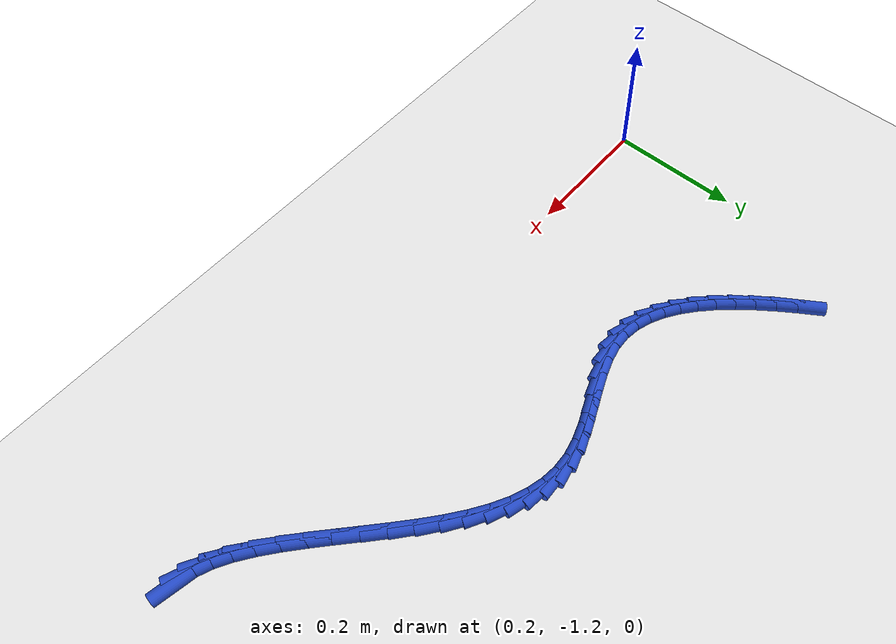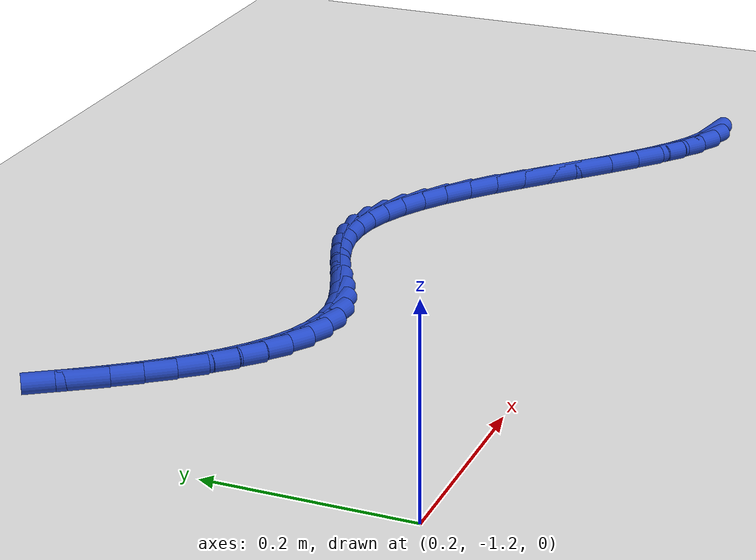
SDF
<sdf version="1.6">
 <world name="default">
  <model name="ground_plane">
   <static>1</static>
   <link name="link">
    <collision name="collision">
     <geometry><plane><normal>0 0 1</normal><size>100 100</size></plane></geometry>
     <surface><friction><ode><mu>100</mu><mu2>50</mu2></ode></friction></surface>
    </collision>
    <visual name="visual">
     <cast_shadows>0</cast_shadows>
     <geometry><plane><normal>0 0 1</normal><size>100 100</size></plane></geometry>
     <material>
      <script><uri>file://media/materials/scripts/gazebo.material</uri><name>Gazebo/WhiteGlow</name></script>
     </material>
    </visual>
   </link>
  </model>
  <model name="line">
   <link name="link_221">
    <pose>1.1336143013700062 -1.1918949117283446 0.01 0 1.57 -0.18952387058512313</pose>
    <collision name="collision">
     <geometry><cylinder><radius>0.01</radius><length>0.08</length></cylinder></geometry>
    </collision>
    <visual name="visual">
     <material>
      <script><name>Gazebo/Blue</name><uri>file://media/materials/scripts/gazebo.material</uri></script>
     </material>
     <geometry><cylinder><radius>0.01</radius><length>0.08</length></cylinder></geometry>
    </visual>
   </link>
   <link name="link_222">
    <pose>1.1137087737763174 -1.1880765111506453 0.01 0 1.57 -0.40078838652270704</pose>
    <collision name="collision">
     <geometry><cylinder><radius>0.01</radius><length>0.08</length></cylinder></geometry>
    </collision>
    <visual name="visual">
     <material>
      <script><name>Gazebo/Blue</name><uri>file://media/materials/scripts/gazebo.material</uri></script>
     </material>
     <geometry><cylinder><radius>0.01</radius><length>0.08</length></cylinder></geometry>
    </visual>
   </link>
   <link name="link_223">
    <pose>1.0924500991500052 -1.1790687251070602 0.01 0 1.57 -0.539802451015101</pose>
    <collision name="collision">
     <geometry><cylinder><radius>0.01</radius><length>0.08</length></cylinder></geometry>
    </collision>
    <visual name="visual">
     <material>
      <script><name>Gazebo/Blue</name><uri>file://media/materials/scripts/gazebo.material</uri></script>
     </material>
     <geometry><cylinder><radius>0.01</radius><length>0.08</length></cylinder></geometry>
    </visual>
   </link>
   <link name="link_224">
    <pose>1.0700231581563246 -1.1656313739450006 0.01 0 1.57 -0.6310668428453812</pose>
    <collision name="collision">
     <geometry><cylinder><radius>0.01</radius><length>0.08</length></cylinder></geometry>
    </collision>
    <visual name="visual">
     <material>
      <script><name>Gazebo/Blue</name><uri>file://media/materials/scripts/gazebo.material</uri></script>
     </material>
     <geometry><cylinder><radius>0.01</radius><length>0.08</length></cylinder></geometry>
    </visual>
   </link>
   <link name="link_225">
    <pose>1.0466128314605314 -1.148524278011877 0.01 0 1.57 -0.6908985467662949</pose>
    <collision name="collision">
     <geometry><cylinder><radius>0.01</radius><length>0.08</length></cylinder></geometry>
    </collision>
    <visual name="visual">
     <material>
      <script><name>Gazebo/Blue</name><uri>file://media/materials/scripts/gazebo.material</uri></script>
     </material>
     <geometry><cylinder><radius>0.01</radius><length>0.08</length></cylinder></geometry>
    </visual>
   </link>
   <link name="link_226">
    <pose>1.0224039997278798 -1.1285072576550994 0.01 0 1.57 -0.7289492516426576</pose>
    <collision name="collision">
     <geometry><cylinder><radius>0.01</radius><length>0.08</length></cylinder></geometry>
    </collision>
    <visual name="visual">
     <material>
      <script><name>Gazebo/Blue</name><uri>file://media/materials/scripts/gazebo.material</uri></script>
     </material>
     <geometry><cylinder><radius>0.01</radius><length>0.08</length></cylinder></geometry>
    </visual>
   </link>
   <link name="link_227">
    <pose>0.997581543623625 -1.106340133222078 0.01 0 1.57 -0.7507093599802385</pose>
    <collision name="collision">
     <geometry><cylinder><radius>0.01</radius><length>0.08</length></cylinder></geometry>
    </collision>
    <visual name="visual">
     <material>
      <script><name>Gazebo/Blue</name><uri>file://media/materials/scripts/gazebo.material</uri></script>
     </material>
     <geometry><cylinder><radius>0.01</radius><length>0.08</length></cylinder></geometry>
    </visual>
   </link>
   <link name="link_228">
    <pose>0.9723303438130224 -1.0827827250602235 0.01 0 1.57 -0.7590935617356627</pose>
    <collision name="collision">
     <geometry><cylinder><radius>0.01</radius><length>0.08</length></cylinder></geometry>
    </collision>
    <visual name="visual">
     <material>
      <script><name>Gazebo/Blue</name><uri>file://media/materials/scripts/gazebo.material</uri></script>
     </material>
     <geometry><cylinder><radius>0.01</radius><length>0.08</length></cylinder></geometry>
    </visual>
   </link>
   <link name="link_229">
    <pose>0.9468352809613271 -1.0585948535169472 0.01 0 1.57 -0.7552630943659574</pose>
    <collision name="collision">
     <geometry><cylinder><radius>0.01</radius><length>0.08</length></cylinder></geometry>
    </collision>
    <visual name="visual">
     <material>
      <script><name>Gazebo/Blue</name><uri>file://media/materials/scripts/gazebo.material</uri></script>
     </material>
     <geometry><cylinder><radius>0.01</radius><length>0.08</length></cylinder></geometry>
    </visual>
   </link>
   <link name="link_230">
    <pose>0.9212812357337936 -1.0345363389396582 0.01 0 1.57 -0.7389516202968986</pose>
    <collision name="collision">
     <geometry><cylinder><radius>0.01</radius><length>0.08</length></cylinder></geometry>
    </collision>
    <visual name="visual">
     <material>
      <script><name>Gazebo/Blue</name><uri>file://media/materials/scripts/gazebo.material</uri></script>
     </material>
     <geometry><cylinder><radius>0.01</radius><length>0.08</length></cylinder></geometry>
    </visual>
   </link>
   <link name="link_231">
    <pose>0.8958530887956775 -1.0113670016757677 0.01 0 1.57 -0.7084242441934158</pose>
    <collision name="collision">
     <geometry><cylinder><radius>0.01</radius><length>0.08</length></cylinder></geometry>
    </collision>
    <visual name="visual">
     <material>
      <script><name>Gazebo/Blue</name><uri>file://media/materials/scripts/gazebo.material</uri></script>
     </material>
     <geometry><cylinder><radius>0.01</radius><length>0.08</length></cylinder></geometry>
    </visual>
   </link>
   <link name="link_232">
    <pose>0.8707356731504244 -0.9898465893062288 0.01 0 1.57 -0.6613481828992555</pose>
    <collision name="collision">
     <geometry><cylinder><radius>0.01</radius><length>0.08</length></cylinder></geometry>
    </collision>
    <visual name="visual">
     <material>
      <script><name>Gazebo/Blue</name><uri>file://media/materials/scripts/gazebo.material</uri></script>
     </material>
     <geometry><cylinder><radius>0.01</radius><length>0.08</length></cylinder></geometry>
    </visual>
   </link>
   <link name="link_233">
    <pose>0.8460461560790415 -0.9706315424880454 0.01 0 1.57 -0.5973584748016434</pose>
    <collision name="collision">
     <geometry><cylinder><radius>0.01</radius><length>0.08</length></cylinder></geometry>
    </collision>
    <visual name="visual">
     <material>
      <script><name>Gazebo/Blue</name><uri>file://media/materials/scripts/gazebo.material</uri></script>
     </material>
     <geometry><cylinder><radius>0.01</radius><length>0.08</length></cylinder></geometry>
    </visual>
   </link>
   <link name="link_234">
    <pose>0.8216992062043372 -0.9540691421925178 0.01 0 1.57 -0.5139113009260561</pose>
    <collision name="collision">
     <geometry><cylinder><radius>0.01</radius><length>0.08</length></cylinder></geometry>
    </collision>
    <visual name="visual">
     <material>
      <script><name>Gazebo/Blue</name><uri>file://media/materials/scripts/gazebo.material</uri></script>
     </material>
     <geometry><cylinder><radius>0.01</radius><length>0.08</length></cylinder></geometry>
    </visual>
   </link>
   <link name="link_235">
    <pose>0.7975717740193152 -0.94044908419379 0.01 0 1.57 -0.40801769125247134</pose>
    <collision name="collision">
     <geometry><cylinder><radius>0.01</radius><length>0.08</length></cylinder></geometry>
    </collision>
    <visual name="visual">
     <material>
      <script><name>Gazebo/Blue</name><uri>file://media/materials/scripts/gazebo.material</uri></script>
     </material>
     <geometry><cylinder><radius>0.01</radius><length>0.08</length></cylinder></geometry>
    </visual>
   </link>
   <link name="link_236">
    <pose>0.773540810016978 -0.9300610642660055 0.01 0 1.57 -0.27801916396661513</pose>
    <collision name="collision">
     <geometry><cylinder><radius>0.01</radius><length>0.08</length></cylinder></geometry>
    </collision>
    <visual name="visual">
     <material>
      <script><name>Gazebo/Blue</name><uri>file://media/materials/scripts/gazebo.material</uri></script>
     </material>
     <geometry><cylinder><radius>0.01</radius><length>0.08</length></cylinder></geometry>
    </visual>
   </link>
   <link name="link_237">
    <pose>0.7494832646903291 -0.9231947781833081 0.01 0 1.57 -0.1255327322023506</pose>
    <collision name="collision">
     <geometry><cylinder><radius>0.01</radius><length>0.08</length></cylinder></geometry>
    </collision>
    <visual name="visual">
     <material>
      <script><name>Gazebo/Blue</name><uri>file://media/materials/scripts/gazebo.material</uri></script>
     </material>
     <geometry><cylinder><radius>0.01</radius><length>0.08</length></cylinder></geometry>
    </visual>
   </link>
   <link name="link_238">
    <pose>0.7252760885323706 -0.9201399217198408 0.01 0 1.57 0.04271399841625901</pose>
    <collision name="collision">
     <geometry><cylinder><radius>0.01</radius><length>0.08</length></cylinder></geometry>
    </collision>
    <visual name="visual">
     <material>
      <script><name>Gazebo/Blue</name><uri>file://media/materials/scripts/gazebo.material</uri></script>
     </material>
     <geometry><cylinder><radius>0.01</radius><length>0.08</length></cylinder></geometry>
    </visual>
   </link>
   <link name="link_239">
    <pose>0.7007962320361059 -0.9211861906497474 0.01 0 1.57 0.20722643835297477</pose>
    <collision name="collision">
     <geometry><cylinder><radius>0.01</radius><length>0.08</length></cylinder></geometry>
    </collision>
    <visual name="visual">
     <material>
      <script><name>Gazebo/Blue</name><uri>file://media/materials/scripts/gazebo.material</uri></script>
     </material>
     <geometry><cylinder><radius>0.01</radius><length>0.08</length></cylinder></geometry>
    </visual>
   </link>
   <link name="link_240">
    <pose>0.6759583955816025 -0.926408211300591 0.01 0 1.57 0.32394574822472527</pose>
    <collision name="collision">
     <geometry><cylinder><radius>0.01</radius><length>0.08</length></cylinder></geometry>
    </collision>
    <visual name="visual">
     <material>
      <script><name>Gazebo/Blue</name><uri>file://media/materials/scripts/gazebo.material</uri></script>
     </material>
     <geometry><cylinder><radius>0.01</radius><length>0.08</length></cylinder></geometry>
    </visual>
   </link>
   <link name="link_241">
    <pose>0.6508607470990322 -0.9348353548340564 0.01 0 1.57 0.38947274445204044</pose>
    <collision name="collision">
     <geometry><cylinder><radius>0.01</radius><length>0.08</length></cylinder></geometry>
    </collision>
    <visual name="visual">
     <material>
      <script><name>Gazebo/Blue</name><uri>file://media/materials/scripts/gazebo.material</uri></script>
     </material>
     <geometry><cylinder><radius>0.01</radius><length>0.08</length></cylinder></geometry>
    </visual>
   </link>
   <link name="link_242">
    <pose>0.6256571114825676 -0.9451799023917862 0.01 0 1.57 0.4113591086860535</pose>
    <collision name="collision">
     <geometry><cylinder><radius>0.01</radius><length>0.08</length></cylinder></geometry>
    </collision>
    <visual name="visual">
     <material>
      <script><name>Gazebo/Blue</name><uri>file://media/materials/scripts/gazebo.material</uri></script>
     </material>
     <geometry><cylinder><radius>0.01</radius><length>0.08</length></cylinder></geometry>
    </visual>
   </link>
   <link name="link_243">
    <pose>0.6005013261618554 -0.9561540636980579 0.01 0 1.57 0.39200312262038484</pose>
    <collision name="collision">
     <geometry><cylinder><radius>0.01</radius><length>0.08</length></cylinder></geometry>
    </collision>
    <visual name="visual">
     <material>
      <script><name>Gazebo/Blue</name><uri>file://media/materials/scripts/gazebo.material</uri></script>
     </material>
     <geometry><cylinder><radius>0.01</radius><length>0.08</length></cylinder></geometry>
    </visual>
   </link>
   <link name="link_244">
    <pose>0.575547228566542 -0.9664700484771502 0.01 0 1.57 0.3279754713875733</pose>
    <collision name="collision">
     <geometry><cylinder><radius>0.01</radius><length>0.08</length></cylinder></geometry>
    </collision>
    <visual name="visual">
     <material>
      <script><name>Gazebo/Blue</name><uri>file://media/materials/scripts/gazebo.material</uri></script>
     </material>
     <geometry><cylinder><radius>0.01</radius><length>0.08</length></cylinder></geometry>
    </visual>
   </link>
   <link name="link_245">
    <pose>0.550948656126274 -0.9748400664533415 0.01 0 1.57 0.21007257894843592</pose>
    <collision name="collision">
     <geometry><cylinder><radius>0.01</radius><length>0.08</length></cylinder></geometry>
    </collision>
    <visual name="visual">
     <material>
      <script><name>Gazebo/Blue</name><uri>file://media/materials/scripts/gazebo.material</uri></script>
     </material>
     <geometry><cylinder><radius>0.01</radius><length>0.08</length></cylinder></geometry>
    </visual>
   </link>
   <link name="link_246">
    <pose>0.5268594462706979 -0.9799763273509101 0.01 0 1.57 0.034811972510469504</pose>
    <collision name="collision">
     <geometry><cylinder><radius>0.01</radius><length>0.08</length></cylinder></geometry>
    </collision>
    <visual name="visual">
     <material>
      <script><name>Gazebo/Blue</name><uri>file://media/materials/scripts/gazebo.material</uri></script>
     </material>
     <geometry><cylinder><radius>0.01</radius><length>0.08</length></cylinder></geometry>
    </visual>
   </link>
   <link name="link_247">
    <pose>0.5034137150242362 -0.9807928493696477 0.01 0 1.57 -0.15235397675072238</pose>
    <collision name="collision">
     <geometry><cylinder><radius>0.01</radius><length>0.08</length></cylinder></geometry>
    </collision>
    <visual name="visual">
     <material>
      <script><name>Gazebo/Blue</name><uri>file://media/materials/scripts/gazebo.material</uri></script>
     </material>
     <geometry><cylinder><radius>0.01</radius><length>0.08</length></cylinder></geometry>
    </visual>
   </link>
   <link name="link_248">
    <pose>0.48063883935891505 -0.977295907837924 0.01 0 1.57 -0.32441164746132867</pose>
    <collision name="collision">
     <geometry><cylinder><radius>0.01</radius><length>0.08</length></cylinder></geometry>
    </collision>
    <visual name="visual">
     <material>
      <script><name>Gazebo/Blue</name><uri>file://media/materials/scripts/gazebo.material</uri></script>
     </material>
     <geometry><cylinder><radius>0.01</radius><length>0.08</length></cylinder></geometry>
    </visual>
   </link>
   <link name="link_249">
    <pose>0.4585262509596337 -0.9698596049967566 0.01 0 1.57 -0.4737303307479795</pose>
    <collision name="collision">
     <geometry><cylinder><radius>0.01</radius><length>0.08</length></cylinder></geometry>
    </collision>
    <visual name="visual">
     <material>
      <script><name>Gazebo/Blue</name><uri>file://media/materials/scripts/gazebo.material</uri></script>
     </material>
     <geometry><cylinder><radius>0.01</radius><length>0.08</length></cylinder></geometry>
    </visual>
   </link>
   <link name="link_250">
    <pose>0.4370673542633558 -0.9588583219143858 0.01 0 1.57 -0.5984403628620285</pose>
    <collision name="collision">
     <geometry><cylinder><radius>0.01</radius><length>0.08</length></cylinder></geometry>
    </collision>
    <visual name="visual">
     <material>
      <script><name>Gazebo/Blue</name><uri>file://media/materials/scripts/gazebo.material</uri></script>
     </material>
     <geometry><cylinder><radius>0.01</radius><length>0.08</length></cylinder></geometry>
    </visual>
   </link>
   <link name="link_251">
    <pose>0.4162535537070443 -0.944666439659051 0.01 0 1.57 -0.7003766347323233</pose>
    <collision name="collision">
     <geometry><cylinder><radius>0.01</radius><length>0.08</length></cylinder></geometry>
    </collision>
    <visual name="visual">
     <material>
      <script><name>Gazebo/Blue</name><uri>file://media/materials/scripts/gazebo.material</uri></script>
     </material>
     <geometry><cylinder><radius>0.01</radius><length>0.08</length></cylinder></geometry>
    </visual>
   </link>
   <link name="link_252">
    <pose>0.3960762537276627 -0.9276583392989923 0.01 0 1.57 -0.7828479311932428</pose>
    <collision name="collision">
     <geometry><cylinder><radius>0.01</radius><length>0.08</length></cylinder></geometry>
    </collision>
    <visual name="visual">
     <material>
      <script><name>Gazebo/Blue</name><uri>file://media/materials/scripts/gazebo.material</uri></script>
     </material>
     <geometry><cylinder><radius>0.01</radius><length>0.08</length></cylinder></geometry>
    </visual>
   </link>
   <link name="link_253">
    <pose>0.3765268587621739 -0.9082084019024493 0.01 0 1.57 -0.8492782284530344</pose>
    <collision name="collision">
     <geometry><cylinder><radius>0.01</radius><length>0.08</length></cylinder></geometry>
    </collision>
    <visual name="visual">
     <material>
      <script><name>Gazebo/Blue</name><uri>file://media/materials/scripts/gazebo.material</uri></script>
     </material>
     <geometry><cylinder><radius>0.01</radius><length>0.08</length></cylinder></geometry>
    </visual>
   </link>
   <link name="link_254">
    <pose>0.35759677324754113 -0.8866910085376623 0.01 0 1.57 -0.9026311945953763</pose>
    <collision name="collision">
     <geometry><cylinder><radius>0.01</radius><length>0.08</length></cylinder></geometry>
    </collision>
    <visual name="visual">
     <material>
      <script><name>Gazebo/Blue</name><uri>file://media/materials/scripts/gazebo.material</uri></script>
     </material>
     <geometry><cylinder><radius>0.01</radius><length>0.08</length></cylinder></geometry>
    </visual>
   </link>
   <link name="link_255">
    <pose>0.33927740162072745 -0.8634805402728707 0.01 0 1.57 -0.9452644722098063</pose>
    <collision name="collision">
     <geometry><cylinder><radius>0.01</radius><length>0.08</length></cylinder></geometry>
    </collision>
    <visual name="visual">
     <material>
      <script><name>Gazebo/Blue</name><uri>file://media/materials/scripts/gazebo.material</uri></script>
     </material>
     <geometry><cylinder><radius>0.01</radius><length>0.08</length></cylinder></geometry>
    </visual>
   </link>
   <link name="link_256">
    <pose>0.3215601483186961 -0.8389513781763148 0.01 0 1.57 -0.9789602731002105</pose>
    <collision name="collision">
     <geometry><cylinder><radius>0.01</radius><length>0.08</length></cylinder></geometry>
    </collision>
    <visual name="visual">
     <material>
      <script><name>Gazebo/Blue</name><uri>file://media/materials/scripts/gazebo.material</uri></script>
     </material>
     <geometry><cylinder><radius>0.01</radius><length>0.08</length></cylinder></geometry>
    </visual>
   </link>
   <link name="link_257">
    <pose>0.3044364177784101 -0.8134779033162338 0.01 0 1.57 -1.0050043618942857</pose>
    <collision name="collision">
     <geometry><cylinder><radius>0.01</radius><length>0.08</length></cylinder></geometry>
    </collision>
    <visual name="visual">
     <material>
      <script><name>Gazebo/Blue</name><uri>file://media/materials/scripts/gazebo.material</uri></script>
     </material>
     <geometry><cylinder><radius>0.01</radius><length>0.08</length></cylinder></geometry>
    </visual>
   </link>
  </model>
 </world>
</sdf>
